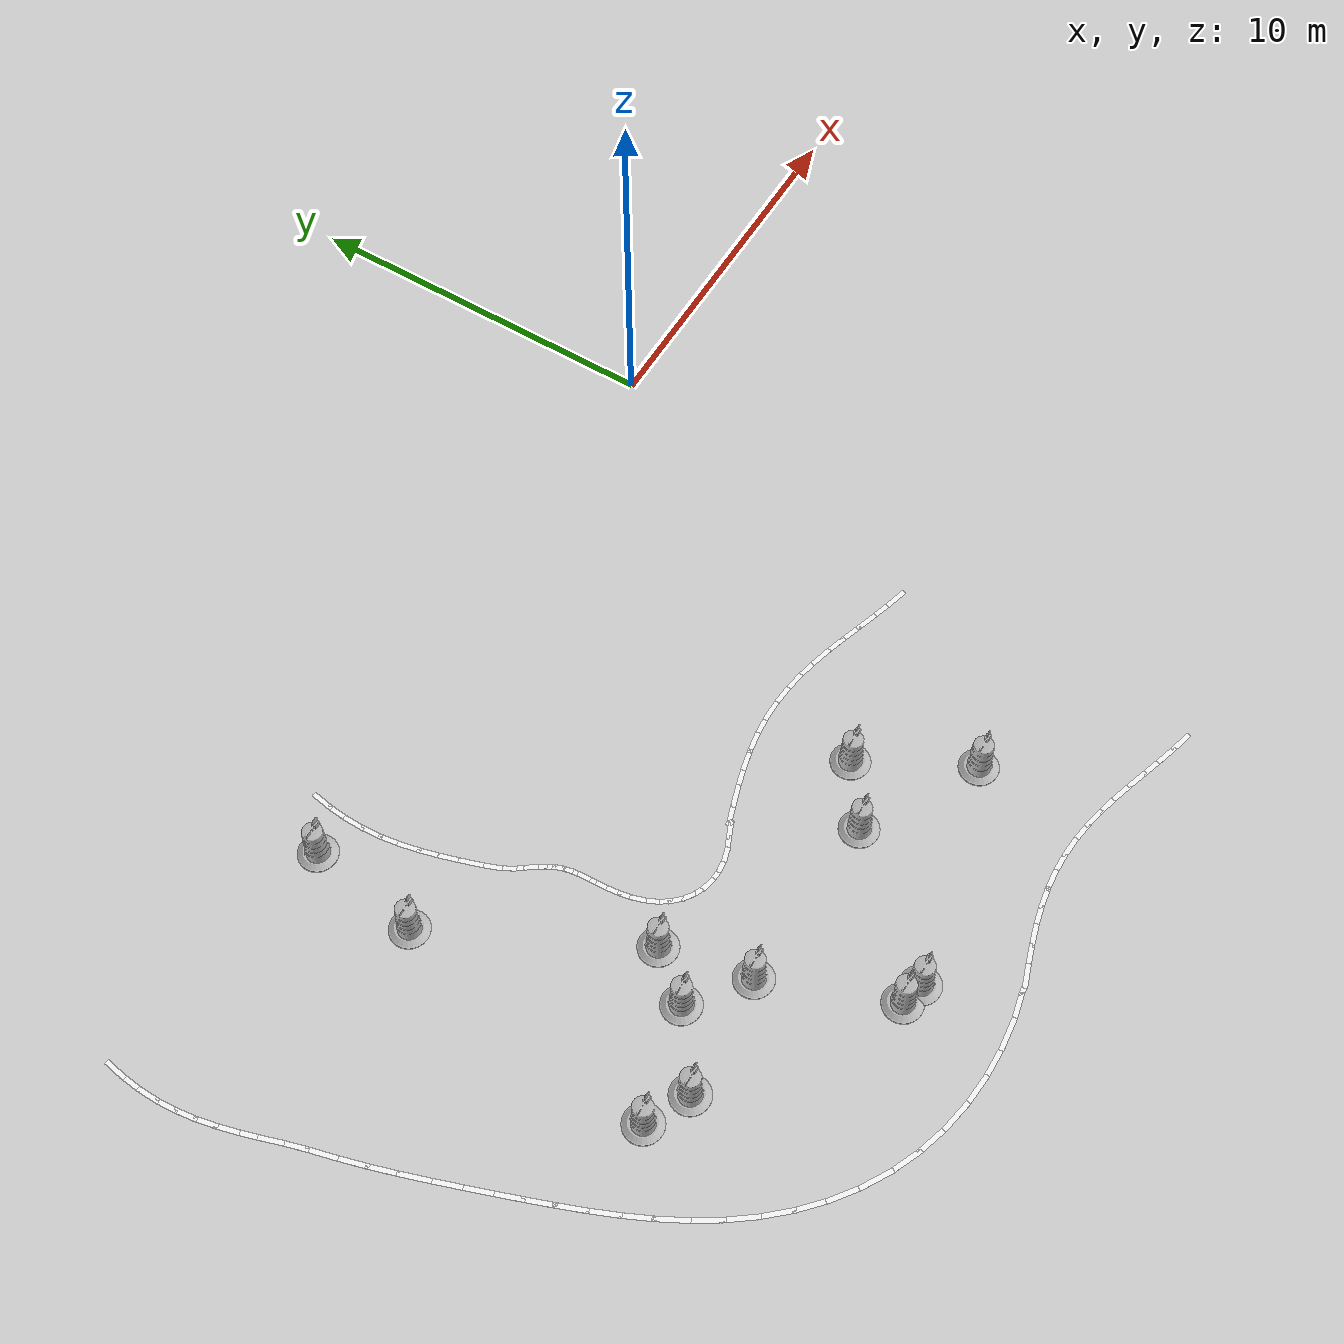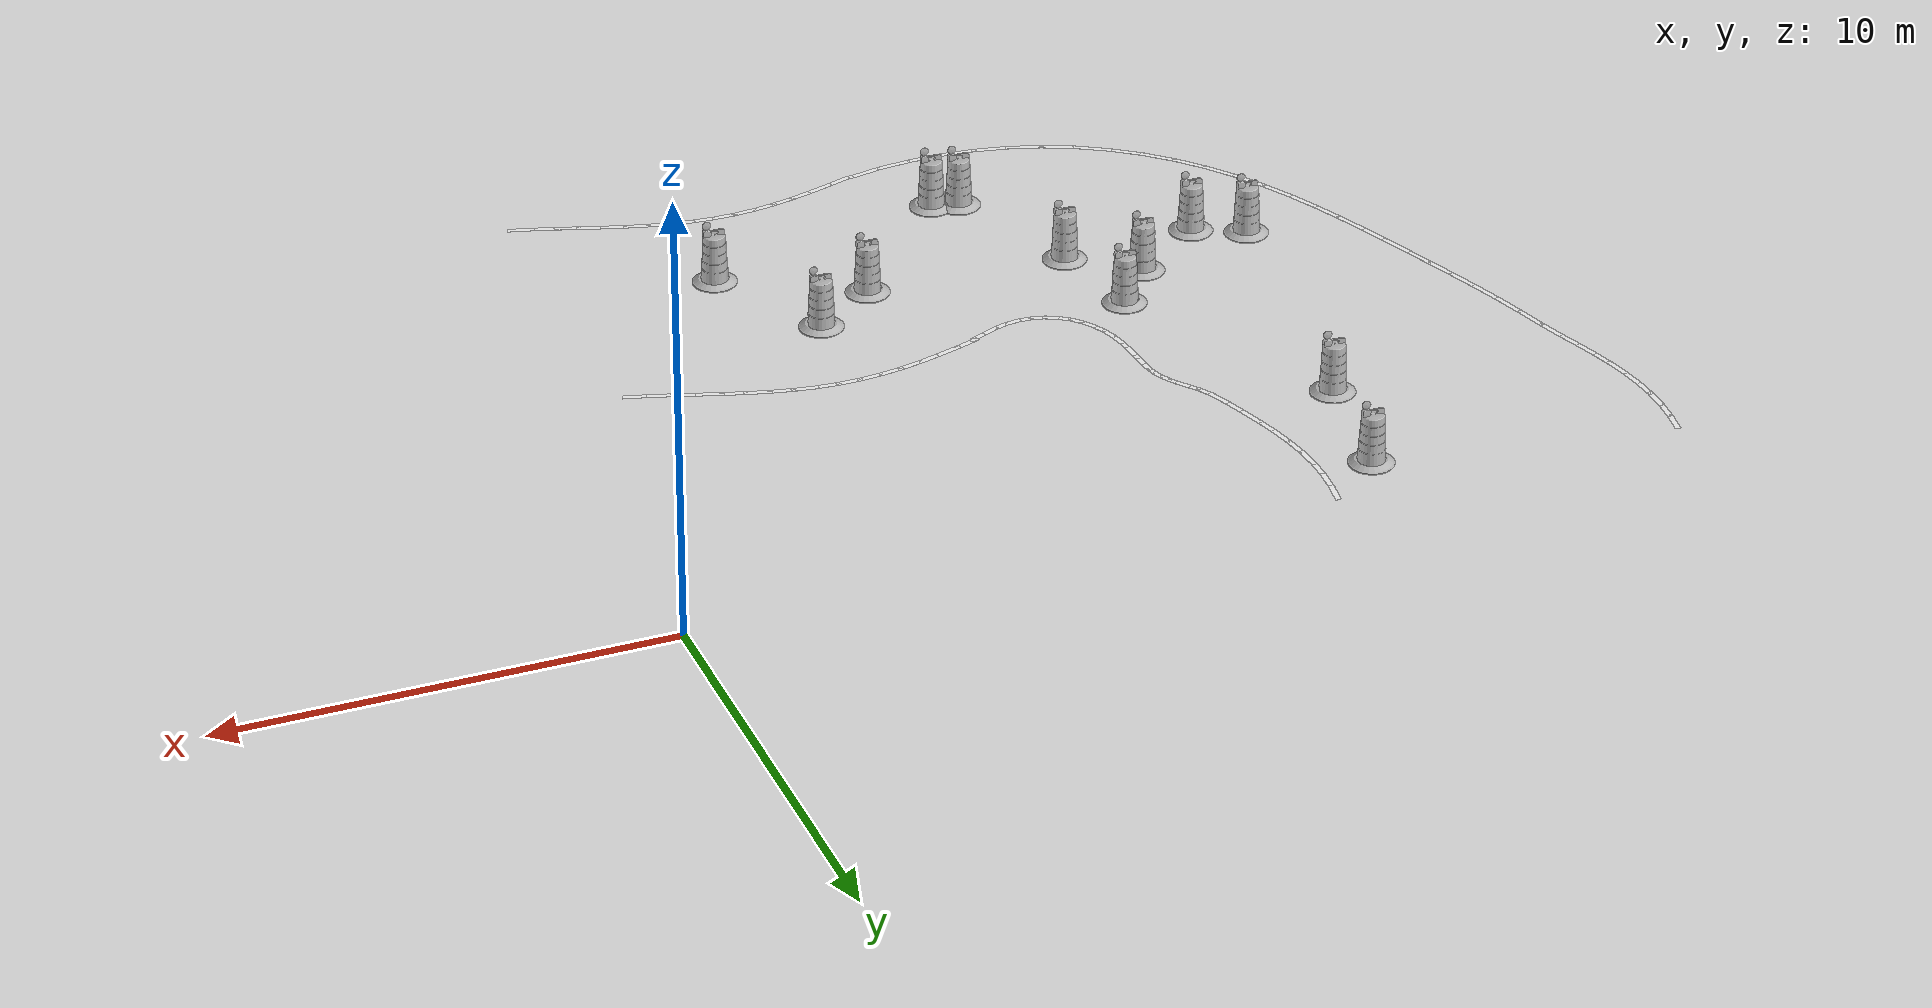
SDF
<sdf version="1.6">
 <model name="orange_igvc">
  <static>true</static>
  <link name="construction_barrel1">
   <pose>-14.58 -10.44 0.05 0 0 0</pose>
   <visual name="visual">
    <geometry><mesh><uri>model://construction_barrel/meshes/construction_barrel.dae</uri></mesh></geometry>
   </visual>
   <collision name="collision">
    <geometry><mesh><uri>model://construction_barrel/meshes/construction_barrel.dae</uri></mesh></geometry>
   </collision>
  </link>
  <link name="construction_barrel4">
   <pose>-13.15 -11.54 0.05 0 0 0</pose>
   <visual name="visual">
    <geometry><mesh><uri>model://construction_barrel/meshes/construction_barrel.dae</uri></mesh></geometry>
   </visual>
   <collision name="collision">
    <geometry><mesh><uri>model://construction_barrel/meshes/construction_barrel.dae</uri></mesh></geometry>
   </collision>
  </link>
  <link name="construction_barrel6">
   <pose>-11.27 -14.93 0.05 0 0 0</pose>
   <visual name="visual">
    <geometry><mesh><uri>model://construction_barrel/meshes/construction_barrel.dae</uri></mesh></geometry>
   </visual>
   <collision name="collision">
    <geometry><mesh><uri>model://construction_barrel/meshes/construction_barrel.dae</uri></mesh></geometry>
   </collision>
  </link>
  <link name="construction_barrel9">
   <pose>-16.32 -11.73 0.05 0 0 0</pose>
   <visual name="visual">
    <geometry><mesh><uri>model://construction_barrel/meshes/construction_barrel.dae</uri></mesh></geometry>
   </visual>
   <collision name="collision">
    <geometry><mesh><uri>model://construction_barrel/meshes/construction_barrel.dae</uri></mesh></geometry>
   </collision>
  </link>
  <link name="construction_barrel10">
   <pose>-13.63 -9.23 0.05 0 0 0</pose>
   <visual name="visual">
    <geometry><mesh><uri>model://construction_barrel/meshes/construction_barrel.dae</uri></mesh></geometry>
   </visual>
   <collision name="collision">
    <geometry><mesh><uri>model://construction_barrel/meshes/construction_barrel.dae</uri></mesh></geometry>
   </collision>
  </link>
  <link name="construction_barrel12">
   <pose>-7.00 -10.69 0.05 0 0 0</pose>
   <visual name="visual">
    <geometry><mesh><uri>model://construction_barrel/meshes/construction_barrel.dae</uri></mesh></geometry>
   </visual>
   <collision name="collision">
    <geometry><mesh><uri>model://construction_barrel/meshes/construction_barrel.dae</uri></mesh></geometry>
   </collision>
  </link>
  <link name="construction_barrel18">
   <pose>-15.81 -1.00 0.05 0 0 0</pose>
   <visual name="visual">
    <geometry><mesh><uri>model://construction_barrel/meshes/construction_barrel.dae</uri></mesh></geometry>
   </visual>
   <collision name="collision">
    <geometry><mesh><uri>model://construction_barrel/meshes/construction_barrel.dae</uri></mesh></geometry>
   </collision>
  </link>
  <link name="construction_barrel21">
   <pose>-8.50 -11.76 0.05 0 0 0</pose>
   <visual name="visual">
    <geometry><mesh><uri>model://construction_barrel/meshes/construction_barrel.dae</uri></mesh></geometry>
   </visual>
   <collision name="collision">
    <geometry><mesh><uri>model://construction_barrel/meshes/construction_barrel.dae</uri></mesh></geometry>
   </collision>
  </link>
  <link name="construction_barrel22">
   <pose>-16.29 -4.00 0.05 0 0 0</pose>
   <visual name="visual">
    <geometry><mesh><uri>model://construction_barrel/meshes/construction_barrel.dae</uri></mesh></geometry>
   </visual>
   <collision name="collision">
    <geometry><mesh><uri>model://construction_barrel/meshes/construction_barrel.dae</uri></mesh></geometry>
   </collision>
  </link>
  <link name="construction_barrel24">
   <pose>-17.45 -11.18 0.05 0 0 0</pose>
   <visual name="visual">
    <geometry><mesh><uri>model://construction_barrel/meshes/construction_barrel.dae</uri></mesh></geometry>
   </visual>
   <collision name="collision">
    <geometry><mesh><uri>model://construction_barrel/meshes/construction_barrel.dae</uri></mesh></geometry>
   </collision>
  </link>
  <link name="construction_barrel25">
   <pose>-11.88 -14.78 0.05 0 0 0</pose>
   <visual name="visual">
    <geometry><mesh><uri>model://construction_barrel/meshes/construction_barrel.dae</uri></mesh></geometry>
   </visual>
   <collision name="collision">
    <geometry><mesh><uri>model://construction_barrel/meshes/construction_barrel.dae</uri></mesh></geometry>
   </collision>
  </link>
  <link name="construction_barrel33">
   <pose>-5.50 -13.45 0.05 0 0 0</pose>
   <visual name="visual">
    <geometry><mesh><uri>model://construction_barrel/meshes/construction_barrel.dae</uri></mesh></geometry>
   </visual>
   <collision name="collision">
    <geometry><mesh><uri>model://construction_barrel/meshes/construction_barrel.dae</uri></mesh></geometry>
   </collision>
  </link>
  <link name="white_line_inner_0">
   <pose>-9.749027792386808 -8.91644247873715 0.005 0 0 0.3237323808328417</pose>
   <visual name="visual">
    <geometry><box><size>0.6253447619169866 0.127 0.001</size></box></geometry>
    <material><ambient>1.0 1.0 1.0 1.0</ambient><diffuse>1.0 1.0 1.0 1.0</diffuse></material>
   </visual>
  </link>
  <link name="white_line_inner_1">
   <pose>-9.25 -8.754158973102335 0.005 0 0 0.30507171125245097</pose>
   <visual name="visual">
    <geometry><box><size>0.6242049454353742 0.127 0.001</size></box></geometry>
    <material><ambient>1.0 1.0 1.0 1.0</ambient><diffuse>1.0 1.0 1.0 1.0</diffuse></material>
   </visual>
  </link>
  <link name="white_line_inner_2">
   <pose>-8.75 -8.606092986514474 0.005 0 0 0.27056072113404495</pose>
   <visual name="visual">
    <geometry><box><size>0.61887609868577 0.127 0.001</size></box></geometry>
    <material><ambient>1.0 1.0 1.0 1.0</ambient><diffuse>1.0 1.0 1.0 1.0</diffuse></material>
   </visual>
  </link>
  <link name="white_line_inner_3">
   <pose>-8.25 -8.480807117056022 0.005 0 0 0.22015442914586508</pose>
   <visual name="visual">
    <geometry><box><size>0.6123666155494492 0.127 0.001</size></box></geometry>
    <material><ambient>1.0 1.0 1.0 1.0</ambient><diffuse>1.0 1.0 1.0 1.0</diffuse></material>
   </visual>
  </link>
  <link name="white_line_inner_4">
   <pose>-7.75 -8.385546797489573 0.005 0 0 0.1559822261198246</pose>
   <visual name="visual">
    <geometry><box><size>0.6061448935681873 0.127 0.001</size></box></geometry>
    <material><ambient>1.0 1.0 1.0 1.0</ambient><diffuse>1.0 1.0 1.0 1.0</diffuse></material>
   </visual>
  </link>
  <link name="white_line_inner_5">
   <pose>-7.25 -8.325821046855701 0.005 0 0 0.08146262360069775</pose>
   <visual name="visual">
    <geometry><box><size>0.6016636395291733 0.127 0.001</size></box></geometry>
    <material><ambient>1.0 1.0 1.0 1.0</ambient><diffuse>1.0 1.0 1.0 1.0</diffuse></material>
   </visual>
  </link>
  <link name="white_line_inner_6">
   <pose>-6.75 -8.30508387726514 0.005 0 0 0.0013053747562815667</pose>
   <visual name="visual">
    <geometry><box><size>0.600000426001116 0.127 0.001</size></box></geometry>
    <material><ambient>1.0 1.0 1.0 1.0</ambient><diffuse>1.0 1.0 1.0 1.0</diffuse></material>
   </visual>
  </link>
  <link name="white_line_inner_7">
   <pose>-6.25 -8.32453454421737 0.005 0 0 -0.07894363862715567</pose>
   <visual name="visual">
    <geometry><box><size>0.6015620805333591 0.127 0.001</size></box></geometry>
    <material><ambient>1.0 1.0 1.0 1.0</ambient><diffuse>1.0 1.0 1.0 1.0</diffuse></material>
   </visual>
  </link>
  <link name="white_line_inner_8">
   <pose>-5.75 -8.383048192210333 0.005 0 0 -0.15372410240245407</pose>
   <visual name="visual">
    <geometry><box><size>0.6059665090060945 0.127 0.001</size></box></geometry>
    <material><ambient>1.0 1.0 1.0 1.0</ambient><diffuse>1.0 1.0 1.0 1.0</diffuse></material>
   </visual>
  </link>
  <link name="white_line_inner_9">
   <pose>-5.25 -8.477240906489243 0.005 0 0 -0.21828972551964032</pose>
   <visual name="visual">
    <geometry><box><size>0.6121537913116318 0.127 0.001</size></box></geometry>
    <material><ambient>1.0 1.0 1.0 1.0</ambient><diffuse>1.0 1.0 1.0 1.0</diffuse></material>
   </visual>
  </link>
  <link name="white_line_inner_10">
   <pose>-4.75 -8.601665408913444 0.005 0 0 -0.26917830241997737</pose>
   <visual name="visual">
    <geometry><box><size>0.618677717624193 0.127 0.001</size></box></geometry>
    <material><ambient>1.0 1.0 1.0 1.0</ambient><diffuse>1.0 1.0 1.0 1.0</diffuse></material>
   </visual>
  </link>
  <link name="white_line_inner_11">
   <pose>-4.25 -8.74912608061362 0.005 0 0 -0.3042226010041338</pose>
   <visual name="visual">
    <geometry><box><size>0.624065006437661 0.127 0.001</size></box></geometry>
    <material><ambient>1.0 1.0 1.0 1.0</ambient><diffuse>1.0 1.0 1.0 1.0</diffuse></material>
   </visual>
  </link>
  <link name="white_line_inner_12">
   <pose>-3.7499999999999996 -8.911095093299569 0.005 0 0 -0.32226682416115493</pose>
   <visual name="visual">
    <geometry><box><size>0.6271370619164044 0.127 0.001</size></box></geometry>
    <material><ambient>1.0 1.0 1.0 1.0</ambient><diffuse>1.0 1.0 1.0 1.0</diffuse></material>
   </visual>
  </link>
  <link name="white_line_inner_13">
   <pose>-3.2499999999999996 -9.07820558384369 0.005 0 0 -0.3228315715904382</pose>
   <visual name="visual">
    <geometry><box><size>0.6272365686535137 0.127 0.001</size></box></geometry>
    <material><ambient>1.0 1.0 1.0 1.0</ambient><diffuse>1.0 1.0 1.0 1.0</diffuse></material>
   </visual>
  </link>
  <link name="white_line_inner_14">
   <pose>-2.7499999999999996 -9.240793351259914 0.005 0 0 -0.30590314914492844</pose>
   <visual name="visual">
    <geometry><box><size>0.6243424107691674 0.127 0.001</size></box></geometry>
    <material><ambient>1.0 1.0 1.0 1.0</ambient><diffuse>1.0 1.0 1.0 1.0</diffuse></material>
   </visual>
  </link>
  <link name="white_line_inner_15">
   <pose>-2.2499999999999996 -9.389455749089171 0.005 0 0 -0.2719266051963547</pose>
   <visual name="visual">
    <geometry><box><size>0.6190732307078665 0.127 0.001</size></box></geometry>
    <material><ambient>1.0 1.0 1.0 1.0</ambient><diffuse>1.0 1.0 1.0 1.0</diffuse></material>
   </visual>
  </link>
  <link name="white_line_inner_176">
   <pose>-14.611917648340356 -0.25 0.005 0 0 -1.7290258523110478</pose>
   <visual name="visual">
    <geometry><box><size>0.6063251121473049 0.127 0.001</size></box></geometry>
    <material><ambient>1.0 1.0 1.0 1.0</ambient><diffuse>1.0 1.0 1.0 1.0</diffuse></material>
   </visual>
  </link>
  <link name="white_line_inner_177">
   <pose>-14.67285191012886 -0.75 0.005 0 0 -1.6547720247853672</pose>
   <visual name="visual">
    <geometry><box><size>0.6017681745223843 0.127 0.001</size></box></geometry>
    <material><ambient>1.0 1.0 1.0 1.0</ambient><diffuse>1.0 1.0 1.0 1.0</diffuse></material>
   </visual>
  </link>
  <link name="white_line_inner_178">
   <pose>-14.694874335370326 -1.25 0.005 0 0 -1.5747123547740902</pose>
   <visual name="visual">
    <geometry><box><size>0.6000038338432805 0.127 0.001</size></box></geometry>
    <material><ambient>1.0 1.0 1.0 1.0</ambient><diffuse>1.0 1.0 1.0 1.0</diffuse></material>
   </visual>
  </link>
  <link name="white_line_inner_179">
   <pose>-14.676711340682633 -1.75 0.005 0 0 -1.4943774067387043</pose>
   <visual name="visual">
    <geometry><box><size>0.6014635237781666 0.127 0.001</size></box></geometry>
    <material><ambient>1.0 1.0 1.0 1.0</ambient><diffuse>1.0 1.0 1.0 1.0</diffuse></material>
   </visual>
  </link>
  <link name="white_line_inner_180">
   <pose>-14.61941331392952 -2.25 0.005 0 0 -1.419341034679056</pose>
   <visual name="visual">
    <geometry><box><size>0.6057900033305835 0.127 0.001</size></box></geometry>
    <material><ambient>1.0 1.0 1.0 1.0</ambient><diffuse>1.0 1.0 1.0 1.0</diffuse></material>
   </visual>
  </link>
  <link name="white_line_inner_181">
   <pose>-14.52629386902502 -2.75 0.005 0 0 -1.3543855726936886</pose>
   <visual name="visual">
    <geometry><box><size>0.6119413172228307 0.127 0.001</size></box></geometry>
    <material><ambient>1.0 1.0 1.0 1.0</ambient><diffuse>1.0 1.0 1.0 1.0</diffuse></material>
   </visual>
  </link>
  <link name="white_line_inner_182">
   <pose>-14.402738215648897 -3.25 0.005 0 0 -1.3030169259915607</pose>
   <visual name="visual">
    <geometry><box><size>0.6184781338331522 0.127 0.001</size></box></geometry>
    <material><ambient>1.0 1.0 1.0 1.0</ambient><diffuse>1.0 1.0 1.0 1.0</diffuse></material>
   </visual>
  </link>
  <link name="white_line_inner_183">
   <pose>-14.255891726083314 -3.75 0.005 0 0 -1.2674404840372357</pose>
   <visual name="visual">
    <geometry><box><size>0.6239226254668137 0.127 0.001</size></box></geometry>
    <material><ambient>1.0 1.0 1.0 1.0</ambient><diffuse>1.0 1.0 1.0 1.0</diffuse></material>
   </visual>
  </link>
  <link name="white_line_inner_184">
   <pose>-14.094246709725725 -4.25 0.005 0 0 -1.2488390674573129</pose>
   <visual name="visual">
    <geometry><box><size>0.6270826048143492 0.127 0.001</size></box></geometry>
    <material><ambient>1.0 1.0 1.0 1.0</ambient><diffuse>1.0 1.0 1.0 1.0</diffuse></material>
   </visual>
  </link>
  <link name="white_line_inner_185">
   <pose>-13.927404942035688 -4.717530890763828 0.005 0 0 -1.2044826340285504</pose>
   <visual name="visual">
    <geometry><box><size>0.5659775097596781 0.127 0.001</size></box></geometry>
    <material><ambient>1.0 1.0 1.0 1.0</ambient><diffuse>1.0 1.0 1.0 1.0</diffuse></material>
   </visual>
  </link>
  <link name="white_line_inner_186">
   <pose>-13.76093714307721 -5.082615791072403 0.005 0 0 -1.0583159725705888</pose>
   <visual name="visual">
    <geometry><box><size>0.4386087570623308 0.127 0.001</size></box></geometry>
    <material><ambient>1.0 1.0 1.0 1.0</ambient><diffuse>1.0 1.0 1.0 1.0</diffuse></material>
   </visual>
  </link>
  <link name="white_line_inner_187">
   <pose>-13.597624903117044 -5.336070156502927 0.005 0 0 -0.9220570269610295</pose>
   <visual name="visual">
    <geometry><box><size>0.36579876002221146 0.127 0.001</size></box></geometry>
    <material><ambient>1.0 1.0 1.0 1.0</ambient><diffuse>1.0 1.0 1.0 1.0</diffuse></material>
   </visual>
  </link>
  <link name="white_line_inner_188">
   <pose>-13.444179773702965 -5.540775684752376 0.005 0 0 -0.9335046727993195</pose>
   <visual name="visual">
    <geometry><box><size>0.3458726271250666 0.127 0.001</size></box></geometry>
    <material><ambient>1.0 1.0 1.0 1.0</ambient><diffuse>1.0 1.0 1.0 1.0</diffuse></material>
   </visual>
  </link>
  <link name="white_line_inner_189">
   <pose>-13.308555353948577 -5.734220658287348 0.005 0 0 -0.9873315067325835</pose>
   <visual name="visual">
    <geometry><box><size>0.3268019891130302 0.127 0.001</size></box></geometry>
    <material><ambient>1.0 1.0 1.0 1.0</ambient><diffuse>1.0 1.0 1.0 1.0</diffuse></material>
   </visual>
  </link>
  <link name="white_line_inner_190">
   <pose>-13.196391308034212 -5.922758296306908 0.005 0 0 -1.0840744377223828</pose>
   <visual name="visual">
    <geometry><box><size>0.3124695791788371 0.127 0.001</size></box></geometry>
    <material><ambient>1.0 1.0 1.0 1.0</ambient><diffuse>1.0 1.0 1.0 1.0</diffuse></material>
   </visual>
  </link>
  <link name="white_line_inner_191">
   <pose>-13.1103453461517 -6.113329887124467 0.005 0 0 -1.2110828203632509</pose>
   <visual name="visual">
    <geometry><box><size>0.3065683558428679 0.127 0.001</size></box></geometry>
    <material><ambient>1.0 1.0 1.0 1.0</ambient><diffuse>1.0 1.0 1.0 1.0</diffuse></material>
   </visual>
  </link>
  <link name="white_line_inner_192">
   <pose>-13.04994089433591 -6.312652349398784 0.005 0 0 -1.3406736954430851</pose>
   <visual name="visual">
    <geometry><box><size>0.31085590931967205 0.127 0.001</size></box></geometry>
    <material><ambient>1.0 1.0 1.0 1.0</ambient><diffuse>1.0 1.0 1.0 1.0</diffuse></material>
   </visual>
  </link>
  <link name="white_line_inner_193">
   <pose>-13.011688437844649 -6.526416953216275 0.005 0 0 -1.4436494776991875</pose>
   <visual name="visual">
    <geometry><box><size>0.32404030641576564 0.127 0.001</size></box></geometry>
    <material><ambient>1.0 1.0 1.0 1.0</ambient><diffuse>1.0 1.0 1.0 1.0</diffuse></material>
   </visual>
  </link>
  <link name="white_line_inner_194">
   <pose>-12.989467704299612 -6.758576141107832 0.005 0 0 -1.5046680761280489</pose>
   <visual name="visual">
    <geometry><box><size>0.3426168666467727 0.127 0.001</size></box></geometry>
    <material><ambient>1.0 1.0 1.0 1.0</ambient><diffuse>1.0 1.0 1.0 1.0</diffuse></material>
   </visual>
  </link>
  <link name="white_line_inner_195">
   <pose>-12.975134610678182 -7.010787565055358 0.005 0 0 -1.5226737583718681</pose>
   <visual name="visual">
    <geometry><box><size>0.3626403132552751 0.127 0.001</size></box></geometry>
    <material><ambient>1.0 1.0 1.0 1.0</ambient><diffuse>1.0 1.0 1.0 1.0</diffuse></material>
   </visual>
  </link>
  <link name="white_line_inner_196">
   <pose>-12.959296986968978 -7.282070196946186 0.005 0 0 -1.502951903598897</pose>
   <visual name="visual">
    <geometry><box><size>0.38087516808272437 0.127 0.001</size></box></geometry>
    <material><ambient>1.0 1.0 1.0 1.0</ambient><diffuse>1.0 1.0 1.0 1.0</diffuse></material>
   </visual>
  </link>
  <link name="white_line_inner_197">
   <pose>-12.932188308423276 -7.568707976455207 0.005 0 0 -1.4513318385111782</pose>
   <visual name="visual">
    <geometry><box><size>0.3951502117608393 0.127 0.001</size></box></geometry>
    <material><ambient>1.0 1.0 1.0 1.0</ambient><diffuse>1.0 1.0 1.0 1.0</diffuse></material>
   </visual>
  </link>
  <link name="white_line_inner_198">
   <pose>-12.884560348003152 -7.86441370487687 0.005 0 0 -1.3720901757968498</pose>
   <visual name="visual">
    <geometry><box><size>0.4043537259173947 0.127 0.001</size></box></geometry>
    <material><ambient>1.0 1.0 1.0 1.0</ambient><diffuse>1.0 1.0 1.0 1.0</diffuse></material>
   </visual>
  </link>
  <link name="white_line_inner_199">
   <pose>-12.80851454067081 -8.160741860030093 0.005 0 0 -1.2677697254526974</pose>
   <visual name="visual">
    <geometry><box><size>0.4083400980282277 0.127 0.001</size></box></geometry>
    <material><ambient>1.0 1.0 1.0 1.0</ambient><diffuse>1.0 1.0 1.0 1.0</diffuse></material>
   </visual>
  </link>
  <link name="white_line_inner_200">
   <pose>-12.698198014107035 -8.447715900549262 0.005 0 0 -1.1397191730490182</pose>
   <visual name="visual">
    <geometry><box><size>0.40781693572747224 0.127 0.001</size></box></geometry>
    <material><ambient>1.0 1.0 1.0 1.0</ambient><diffuse>1.0 1.0 1.0 1.0</diffuse></material>
   </visual>
  </link>
  <link name="white_line_inner_201">
   <pose>-12.550303104602934 -8.71461557090016 0.005 0 0 -0.9889749931060908</pose>
   <visual name="visual">
    <geometry><box><size>0.4041937612699208 0.127 0.001</size></box></geometry>
    <material><ambient>1.0 1.0 1.0 1.0</ambient><diffuse>1.0 1.0 1.0 1.0</diffuse></material>
   </visual>
  </link>
  <link name="white_line_inner_202">
   <pose>-12.364327550101496 -8.95085455883131 0.005 0 0 -0.8174180444900052</pose>
   <visual name="visual">
    <geometry><box><size>0.39934290314154497 0.127 0.001</size></box></geometry>
    <material><ambient>1.0 1.0 1.0 1.0</ambient><diffuse>1.0 1.0 1.0 1.0</diffuse></material>
   </visual>
  </link>
  <link name="white_line_inner_203">
   <pose>-12.142574741586524 -9.146869997119556 0.005 0 0 -0.6290120205087216</pose>
   <visual name="visual">
    <geometry><box><size>0.3952268328136679 0.127 0.001</size></box></geometry>
    <material><ambient>1.0 1.0 1.0 1.0</ambient><diffuse>1.0 1.0 1.0 1.0</diffuse></material>
   </visual>
  </link>
  <link name="white_line_inner_204">
   <pose>-11.889897380401521 -9.294943570008614 0.005 0 0 -0.43052268595960497</pose>
   <visual name="visual">
    <geometry><box><size>0.39340551446416794 0.127 0.001</size></box></geometry>
    <material><ambient>1.0 1.0 1.0 1.0</ambient><diffuse>1.0 1.0 1.0 1.0</diffuse></material>
   </visual>
  </link>
  <link name="white_line_inner_205">
   <pose>-11.613211434789378 -9.389879560125898 0.005 0 0 -0.2309323808807783</pose>
   <visual name="visual">
    <geometry><box><size>0.39455985482059586 0.127 0.001</size></box></geometry>
    <material><ambient>1.0 1.0 1.0 1.0</ambient><diffuse>1.0 1.0 1.0 1.0</diffuse></material>
   </visual>
  </link>
  <link name="white_line_inner_206">
   <pose>-11.320828258266365 -9.429477565235988 0.005 0 0 -0.039491450345447425</pose>
   <visual name="visual">
    <geometry><box><size>0.39825860599727125 0.127 0.001</size></box></geometry>
    <material><ambient>1.0 1.0 1.0 1.0</ambient><diffuse>1.0 1.0 1.0 1.0</diffuse></material>
   </visual>
  </link>
  <link name="white_line_inner_207">
   <pose>-11.021669208984932 -9.414755714183094 0.005 0 0 0.1364115962759082</pose>
   <visual name="visual">
    <geometry><box><size>0.4031078039558499 0.127 0.001</size></box></geometry>
    <material><ambient>1.0 1.0 1.0 1.0</ambient><diffuse>1.0 1.0 1.0 1.0</diffuse></material>
   </visual>
  </link>
  <link name="white_line_inner_208">
   <pose>-10.724437591096628 -9.349902383881348 0.005 0 0 0.29219263343596485</pose>
   <visual name="visual">
    <geometry><box><size>0.40719164058463075 0.127 0.001</size></box></geometry>
    <material><ambient>1.0 1.0 1.0 1.0</ambient><diffuse>1.0 1.0 1.0 1.0</diffuse></material>
   </visual>
  </link>
  <link name="white_line_inner_209">
   <pose>-10.436826276058937 -9.241958656897722 0.005 0 0 0.4255932929215886</pose>
   <visual name="visual">
    <geometry><box><size>0.4085785058951439 0.127 0.001</size></box></geometry>
    <material><ambient>1.0 1.0 1.0 1.0</ambient><diffuse>1.0 1.0 1.0 1.0</diffuse></material>
   </visual>
  </link>
  <link name="white_line_inner_210">
   <pose>-10.1109499609369 -9.10143530518469 0.005 0 0 0.3929227334134169</pose>
   <visual name="visual">
    <geometry><box><size>0.5012812670194552 0.127 0.001</size></box></geometry>
    <material><ambient>1.0 1.0 1.0 1.0</ambient><diffuse>1.0 1.0 1.0 1.0</diffuse></material>
   </visual>
  </link>
  <link name="white_line_inner_211">
   <pose>-9.961827474024139 -9.01230623778757 0.005 0 0 2.81414595221545</pose>
   <visual name="visual">
    <geometry><box><size>0.17652209786667927 0.127 0.001</size></box></geometry>
    <material><ambient>1.0 1.0 1.0 1.0</ambient><diffuse>1.0 1.0 1.0 1.0</diffuse></material>
   </visual>
  </link>
  <link name="white_line_outer_0">
   <pose>-9.750972207613192 -16.9164420061433 0.005 0 0 0.32139233195314476</pose>
   <visual name="visual">
    <geometry><box><size>0.6290327337843307 0.127 0.001</size></box></geometry>
    <material><ambient>1.0 1.0 1.0 1.0</ambient><diffuse>1.0 1.0 1.0 1.0</diffuse></material>
   </visual>
  </link>
  <link name="white_line_outer_1">
   <pose>-9.25 -16.754158973102335 0.005 0 0 0.30507171125245097</pose>
   <visual name="visual">
    <geometry><box><size>0.6242049454353742 0.127 0.001</size></box></geometry>
    <material><ambient>1.0 1.0 1.0 1.0</ambient><diffuse>1.0 1.0 1.0 1.0</diffuse></material>
   </visual>
  </link>
  <link name="white_line_outer_2">
   <pose>-8.75 -16.606092986514476 0.005 0 0 0.27056072113404495</pose>
   <visual name="visual">
    <geometry><box><size>0.61887609868577 0.127 0.001</size></box></geometry>
    <material><ambient>1.0 1.0 1.0 1.0</ambient><diffuse>1.0 1.0 1.0 1.0</diffuse></material>
   </visual>
  </link>
  <link name="white_line_outer_3">
   <pose>-8.25 -16.480807117056024 0.005 0 0 0.22015442914586508</pose>
   <visual name="visual">
    <geometry><box><size>0.6123666155494492 0.127 0.001</size></box></geometry>
    <material><ambient>1.0 1.0 1.0 1.0</ambient><diffuse>1.0 1.0 1.0 1.0</diffuse></material>
   </visual>
  </link>
  <link name="white_line_outer_4">
   <pose>-7.75 -16.385546797489575 0.005 0 0 0.1559822261198246</pose>
   <visual name="visual">
    <geometry><box><size>0.6061448935681873 0.127 0.001</size></box></geometry>
    <material><ambient>1.0 1.0 1.0 1.0</ambient><diffuse>1.0 1.0 1.0 1.0</diffuse></material>
   </visual>
  </link>
  <link name="white_line_outer_5">
   <pose>-7.25 -16.3258210468557 0.005 0 0 0.08146262360069775</pose>
   <visual name="visual">
    <geometry><box><size>0.6016636395291733 0.127 0.001</size></box></geometry>
    <material><ambient>1.0 1.0 1.0 1.0</ambient><diffuse>1.0 1.0 1.0 1.0</diffuse></material>
   </visual>
  </link>
  <link name="white_line_outer_6">
   <pose>-6.75 -16.30508387726514 0.005 0 0 0.0013053747562815667</pose>
   <visual name="visual">
    <geometry><box><size>0.600000426001116 0.127 0.001</size></box></geometry>
    <material><ambient>1.0 1.0 1.0 1.0</ambient><diffuse>1.0 1.0 1.0 1.0</diffuse></material>
   </visual>
  </link>
  <link name="white_line_outer_7">
   <pose>-6.25 -16.32453454421737 0.005 0 0 -0.07894363862715567</pose>
   <visual name="visual">
    <geometry><box><size>0.6015620805333591 0.127 0.001</size></box></geometry>
    <material><ambient>1.0 1.0 1.0 1.0</ambient><diffuse>1.0 1.0 1.0 1.0</diffuse></material>
   </visual>
  </link>
  <link name="white_line_outer_8">
   <pose>-5.75 -16.38304819221033 0.005 0 0 -0.15372410240245407</pose>
   <visual name="visual">
    <geometry><box><size>0.6059665090060945 0.127 0.001</size></box></geometry>
    <material><ambient>1.0 1.0 1.0 1.0</ambient><diffuse>1.0 1.0 1.0 1.0</diffuse></material>
   </visual>
  </link>
  <link name="white_line_outer_9">
   <pose>-5.25 -16.477240906489243 0.005 0 0 -0.21828972551964032</pose>
   <visual name="visual">
    <geometry><box><size>0.6121537913116318 0.127 0.001</size></box></geometry>
    <material><ambient>1.0 1.0 1.0 1.0</ambient><diffuse>1.0 1.0 1.0 1.0</diffuse></material>
   </visual>
  </link>
  <link name="white_line_outer_10">
   <pose>-4.75 -16.601665408913444 0.005 0 0 -0.26917830241998064</pose>
   <visual name="visual">
    <geometry><box><size>0.6186777176241935 0.127 0.001</size></box></geometry>
    <material><ambient>1.0 1.0 1.0 1.0</ambient><diffuse>1.0 1.0 1.0 1.0</diffuse></material>
   </visual>
  </link>
  <link name="white_line_outer_11">
   <pose>-4.25 -16.74912608061362 0.005 0 0 -0.30422260100412757</pose>
   <visual name="visual">
    <geometry><box><size>0.6240650064376595 0.127 0.001</size></box></geometry>
    <material><ambient>1.0 1.0 1.0 1.0</ambient><diffuse>1.0 1.0 1.0 1.0</diffuse></material>
   </visual>
  </link>
  <link name="white_line_outer_12">
   <pose>-3.75 -16.91109509329957 0.005 0 0 -0.3222668241611616</pose>
   <visual name="visual">
    <geometry><box><size>0.6271370619164051 0.127 0.001</size></box></geometry>
    <material><ambient>1.0 1.0 1.0 1.0</ambient><diffuse>1.0 1.0 1.0 1.0</diffuse></material>
   </visual>
  </link>
  <link name="white_line_outer_13">
   <pose>-3.2500000000000004 -17.07820558384369 0.005 0 0 -0.322831571590435</pose>
   <visual name="visual">
    <geometry><box><size>0.6272365686535132 0.127 0.001</size></box></geometry>
    <material><ambient>1.0 1.0 1.0 1.0</ambient><diffuse>1.0 1.0 1.0 1.0</diffuse></material>
   </visual>
  </link>
  <link name="white_line_outer_14">
   <pose>-2.7500000000000004 -17.240793351259914 0.005 0 0 -0.30590314914492844</pose>
   <visual name="visual">
    <geometry><box><size>0.6243424107691674 0.127 0.001</size></box></geometry>
    <material><ambient>1.0 1.0 1.0 1.0</ambient><diffuse>1.0 1.0 1.0 1.0</diffuse></material>
   </visual>
  </link>
  <link name="white_line_outer_15">
   <pose>-2.2500000000000004 -17.389455749089173 0.005 0 0 -0.2719266051963546</pose>
   <visual name="visual">
    <geometry><box><size>0.6190732307078667 0.127 0.001</size></box></geometry>
    <material><ambient>1.0 1.0 1.0 1.0</ambient><diffuse>1.0 1.0 1.0 1.0</diffuse></material>
   </visual>
  </link>
  <link name="white_line_outer_176">
   <pose>-22.611917648340356 -0.25 0.005 0 0 -1.7290258523110478</pose>
   <visual name="visual">
    <geometry><box><size>0.6063251121473049 0.127 0.001</size></box></geometry>
    <material><ambient>1.0 1.0 1.0 1.0</ambient><diffuse>1.0 1.0 1.0 1.0</diffuse></material>
   </visual>
  </link>
  <link name="white_line_outer_177">
   <pose>-22.672851910128863 -0.75 0.005 0 0 -1.6547720247853672</pose>
   <visual name="visual">
    <geometry><box><size>0.6017681745223843 0.127 0.001</size></box></geometry>
    <material><ambient>1.0 1.0 1.0 1.0</ambient><diffuse>1.0 1.0 1.0 1.0</diffuse></material>
   </visual>
  </link>
  <link name="white_line_outer_178">
   <pose>-22.694874335370322 -1.25 0.005 0 0 -1.5747123547740867</pose>
   <visual name="visual">
    <geometry><box><size>0.6000038338432805 0.127 0.001</size></box></geometry>
    <material><ambient>1.0 1.0 1.0 1.0</ambient><diffuse>1.0 1.0 1.0 1.0</diffuse></material>
   </visual>
  </link>
  <link name="white_line_outer_179">
   <pose>-22.67671134068263 -1.75 0.005 0 0 -1.494377406738708</pose>
   <visual name="visual">
    <geometry><box><size>0.6014635237781664 0.127 0.001</size></box></geometry>
    <material><ambient>1.0 1.0 1.0 1.0</ambient><diffuse>1.0 1.0 1.0 1.0</diffuse></material>
   </visual>
  </link>
  <link name="white_line_outer_180">
   <pose>-22.61941331392952 -2.25 0.005 0 0 -1.419341034679056</pose>
   <visual name="visual">
    <geometry><box><size>0.6057900033305835 0.127 0.001</size></box></geometry>
    <material><ambient>1.0 1.0 1.0 1.0</ambient><diffuse>1.0 1.0 1.0 1.0</diffuse></material>
   </visual>
  </link>
  <link name="white_line_outer_181">
   <pose>-22.526293869025018 -2.75 0.005 0 0 -1.3543855726936886</pose>
   <visual name="visual">
    <geometry><box><size>0.6119413172228307 0.127 0.001</size></box></geometry>
    <material><ambient>1.0 1.0 1.0 1.0</ambient><diffuse>1.0 1.0 1.0 1.0</diffuse></material>
   </visual>
  </link>
  <link name="white_line_outer_182">
   <pose>-22.402738215648895 -3.25 0.005 0 0 -1.3030169259915607</pose>
   <visual name="visual">
    <geometry><box><size>0.6184781338331522 0.127 0.001</size></box></geometry>
    <material><ambient>1.0 1.0 1.0 1.0</ambient><diffuse>1.0 1.0 1.0 1.0</diffuse></material>
   </visual>
  </link>
  <link name="white_line_outer_183">
   <pose>-22.255891726083313 -3.75 0.005 0 0 -1.2674404840372357</pose>
   <visual name="visual">
    <geometry><box><size>0.6239226254668137 0.127 0.001</size></box></geometry>
    <material><ambient>1.0 1.0 1.0 1.0</ambient><diffuse>1.0 1.0 1.0 1.0</diffuse></material>
   </visual>
  </link>
  <link name="white_line_outer_184">
   <pose>-22.094246709725724 -4.25 0.005 0 0 -1.2488390674573129</pose>
   <visual name="visual">
    <geometry><box><size>0.6270826048143492 0.127 0.001</size></box></geometry>
    <material><ambient>1.0 1.0 1.0 1.0</ambient><diffuse>1.0 1.0 1.0 1.0</diffuse></material>
   </visual>
  </link>
  <link name="white_line_outer_185">
   <pose>-21.92691675019516 -4.780023261441685 0.005 0 0 -1.279561593638299</pose>
   <visual name="visual">
    <geometry><box><size>0.6846668006661594 0.127 0.001</size></box></geometry>
    <material><ambient>1.0 1.0 1.0 1.0</ambient><diffuse>1.0 1.0 1.0 1.0</diffuse></material>
   </visual>
  </link>
  <link name="white_line_outer_186">
   <pose>-21.75263899403708 -5.394945433119778 0.005 0 0 -1.3073187146327903</pose>
   <visual name="visual">
    <geometry><box><size>0.7937386656292792 0.127 0.001</size></box></geometry>
    <material><ambient>1.0 1.0 1.0 1.0</ambient><diffuse>1.0 1.0 1.0 1.0</diffuse></material>
   </visual>
  </link>
  <link name="white_line_outer_187">
   <pose>-21.558605614834757 -6.084606361413357 0.005 0 0 -1.2864241181401468</pose>
   <visual name="visual">
    <geometry><box><size>0.8392123014489796 0.127 0.001</size></box></geometry>
    <material><ambient>1.0 1.0 1.0 1.0</ambient><diffuse>1.0 1.0 1.0 1.0</diffuse></material>
   </visual>
  </link>
  <link name="white_line_outer_188">
   <pose>-21.3428636950253 -6.785087805342375 0.005 0 0 -1.2573801629723287</pose>
   <visual name="visual">
    <geometry><box><size>0.8268465377981766 0.127 0.001</size></box></geometry>
    <material><ambient>1.0 1.0 1.0 1.0</ambient><diffuse>1.0 1.0 1.0 1.0</diffuse></material>
   </visual>
  </link>
  <link name="white_line_outer_189">
   <pose>-21.11409829319618 -7.469449682354526 0.005 0 0 -1.2388818874341403</pose>
   <visual name="visual">
    <geometry><box><size>0.816385017799575 0.127 0.001</size></box></geometry>
    <material><ambient>1.0 1.0 1.0 1.0</ambient><diffuse>1.0 1.0 1.0 1.0</diffuse></material>
   </visual>
  </link>
  <link name="white_line_outer_190">
   <pose>-20.87831278706948 -8.142128191646524 0.005 0 0 -1.2283868841192216</pose>
   <visual name="visual">
    <geometry><box><size>0.8092449097853138 0.127 0.001</size></box></geometry>
    <material><ambient>1.0 1.0 1.0 1.0</ambient><diffuse>1.0 1.0 1.0 1.0</diffuse></material>
   </visual>
  </link>
  <link name="white_line_outer_191">
   <pose>-20.638647625993645 -8.80817406179018 0.005 0 0 -1.2223788464010734</pose>
   <visual name="visual">
    <geometry><box><size>0.8064683552190034 0.127 0.001</size></box></geometry>
    <material><ambient>1.0 1.0 1.0 1.0</ambient><diffuse>1.0 1.0 1.0 1.0</diffuse></material>
   </visual>
  </link>
  <link name="white_line_outer_192">
   <pose>-20.395226115688917 -9.472447494558716 0.005 0 0 -1.2167182108965264</pose>
   <visual name="visual">
    <geometry><box><size>0.8084764983142343 0.127 0.001</size></box></geometry>
    <material><ambient>1.0 1.0 1.0 1.0</ambient><diffuse>1.0 1.0 1.0 1.0</diffuse></material>
   </visual>
  </link>
  <link name="white_line_outer_193">
   <pose>-20.14527341910989 -10.138824136448825 0.005 0 0 -1.2072147121141354</pose>
   <visual name="visual">
    <geometry><box><size>0.8149638642097878 0.127 0.001</size></box></geometry>
    <material><ambient>1.0 1.0 1.0 1.0</ambient><diffuse>1.0 1.0 1.0 1.0</diffuse></material>
   </visual>
  </link>
  <link name="white_line_outer_194">
   <pose>-19.883495948785374 -10.809488989668724 0.005 0 0 -1.190219288296252</pose>
   <visual name="visual">
    <geometry><box><size>0.8249753257288462 0.127 0.001</size></box></geometry>
    <material><ambient>1.0 1.0 1.0 1.0</ambient><diffuse>1.0 1.0 1.0 1.0</diffuse></material>
   </visual>
  </link>
  <link name="white_line_outer_195">
   <pose>-19.602685085623317 -11.484387350961299 0.005 0 0 -1.163019452055868</pose>
   <visual name="visual">
    <geometry><box><size>0.8371346223961673 0.127 0.001</size></box></geometry>
    <material><ambient>1.0 1.0 1.0 1.0</ambient><diffuse>1.0 1.0 1.0 1.0</diffuse></material>
   </visual>
  </link>
  <link name="white_line_outer_196">
   <pose>-19.294489249599735 -12.160887608769114 0.005 0 0 -1.1239507372172877</pose>
   <visual name="visual">
    <geometry><box><size>0.8499406166443295 0.127 0.001</size></box></geometry>
    <material><ambient>1.0 1.0 1.0 1.0</ambient><diffuse>1.0 1.0 1.0 1.0</diffuse></material>
   </visual>
  </link>
  <link name="white_line_outer_197">
   <pose>-18.950283568528455 -12.833691336609611 0.005 0 0 -1.072288224237521</pose>
   <visual name="visual">
    <geometry><box><size>0.8620430461932305 0.127 0.001</size></box></geometry>
    <material><ambient>1.0 1.0 1.0 1.0</ambient><diffuse>1.0 1.0 1.0 1.0</diffuse></material>
   </visual>
  </link>
  <link name="white_line_outer_198">
   <pose>-18.562058072380456 -13.495003366013053 0.005 0 0 -1.0080487012304689</pose>
   <visual name="visual">
    <geometry><box><size>0.8724401988189672 0.127 0.001</size></box></geometry>
    <material><ambient>1.0 1.0 1.0 1.0</ambient><diffuse>1.0 1.0 1.0 1.0</diffuse></material>
   </visual>
  </link>
  <link name="white_line_outer_199">
   <pose>-18.123244222206125 -14.134950490017054 0.005 0 0 -0.9318110271074854</pose>
   <visual name="visual">
    <geometry><box><size>0.8805769999479292 0.127 0.001</size></box></geometry>
    <material><ambient>1.0 1.0 1.0 1.0</ambient><diffuse>1.0 1.0 1.0 1.0</diffuse></material>
   </visual>
  </link>
  <link name="white_line_outer_200">
   <pose>-17.629405747130242 -14.742214342536146 0.005 0 0 -0.8446039822177351</pose>
   <visual name="visual">
    <geometry><box><size>0.8863462165380117 0.127 0.001</size></box></geometry>
    <material><ambient>1.0 1.0 1.0 1.0</ambient><diffuse>1.0 1.0 1.0 1.0</diffuse></material>
   </visual>
  </link>
  <link name="white_line_outer_201">
   <pose>-17.0787326284454 -15.304823943174517 0.005 0 0 -0.7478601634983155</pose>
   <visual name="visual">
    <geometry><box><size>0.8900076375281969 0.127 0.001</size></box></geometry>
    <material><ambient>1.0 1.0 1.0 1.0</ambient><diffuse>1.0 1.0 1.0 1.0</diffuse></material>
   </visual>
  </link>
  <link name="white_line_outer_202">
   <pose>-16.47229544438191 -15.811038238731179 0.005 0 0 -0.6434043571171614</pose>
   <visual name="visual">
    <geometry><box><size>0.892047024936367 0.127 0.001</size></box></geometry>
    <material><ambient>1.0 1.0 1.0 1.0</ambient><diffuse>1.0 1.0 1.0 1.0</diffuse></material>
   </visual>
  </link>
  <link name="white_line_outer_203">
   <pose>-15.81403947958905 -16.250240114184216 0.005 0 0 -0.5334339273581009</pose>
   <visual name="visual">
    <geometry><box><size>0.893003458435597 0.127 0.001</size></box></geometry>
    <material><ambient>1.0 1.0 1.0 1.0</ambient><diffuse>1.0 1.0 1.0 1.0</diffuse></material>
   </visual>
  </link>
  <link name="white_line_outer_204">
   <pose>-15.11052197089433 -16.613761615944462 0.005 0 0 -0.42045503288636965</pose>
   <visual name="visual">
    <geometry><box><size>0.8933005421539749 0.127 0.001</size></box></geometry>
    <material><ambient>1.0 1.0 1.0 1.0</ambient><diffuse>1.0 1.0 1.0 1.0</diffuse></material>
   </visual>
  </link>
  <link name="white_line_outer_205">
   <pose>-14.370419407668587 -16.895565707087712 0.005 0 0 -0.3071601495547474</pose>
   <visual name="visual">
    <geometry><box><size>0.8931195717447384 0.127 0.001</size></box></geometry>
    <material><ambient>1.0 1.0 1.0 1.0</ambient><diffuse>1.0 1.0 1.0 1.0</diffuse></material>
   </visual>
  </link>
  <link name="white_line_outer_206">
   <pose>-13.603852775402679 -17.09272226944306 0.005 0 0 -0.1962621195693312</pose>
   <visual name="visual">
    <geometry><box><size>0.8923460180257455 0.127 0.001</size></box></geometry>
    <material><ambient>1.0 1.0 1.0 1.0</ambient><diffuse>1.0 1.0 1.0 1.0</diffuse></material>
   </visual>
  </link>
  <link name="white_line_outer_207">
   <pose>-12.82159510849612 -17.20563416906044 0.005 0 0 -0.09032311700798246</pose>
   <visual name="visual">
    <geometry><box><size>0.8906032956804248 0.127 0.001</size></box></geometry>
    <material><ambient>1.0 1.0 1.0 1.0</ambient><diffuse>1.0 1.0 1.0 1.0</diffuse></material>
   </visual>
  </link>
  <link name="white_line_outer_208">
   <pose>-12.034236200863884 -17.237991375789015 0.005 0 0 0.008380307917213208</pose>
   <visual name="visual">
    <geometry><box><size>0.8873649514306117 0.127 0.001</size></box></geometry>
    <material><ambient>1.0 1.0 1.0 1.0</ambient><diffuse>1.0 1.0 1.0 1.0</diffuse></material>
   </visual>
  </link>
  <link name="white_line_outer_209">
   <pose>-11.251382860541064 -17.196455367128983 0.005 0 0 0.09793433507952175</pose>
   <visual name="visual">
    <geometry><box><size>0.8821170752051862 0.127 0.001</size></box></geometry>
    <material><ambient>1.0 1.0 1.0 1.0</ambient><diffuse>1.0 1.0 1.0 1.0</diffuse></material>
   </visual>
  </link>
  <link name="white_line_outer_210">
   <pose>-10.535461853076928 -17.088909453326842 0.005 0 0 0.20902687585218543</pose>
   <visual name="visual">
    <geometry><box><size>0.7680130718661436 0.127 0.001</size></box></geometry>
    <material><ambient>1.0 1.0 1.0 1.0</ambient><diffuse>1.0 1.0 1.0 1.0</diffuse></material>
   </visual>
  </link>
  <link name="white_line_outer_211">
   <pose>-10.105334974719732 -17.00979996691965 0.005 0 0 0.0945080839338313</pose>
   <visual name="visual">
    <geometry><box><size>0.3077080297629845 0.127 0.001</size></box></geometry>
    <material><ambient>1.0 1.0 1.0 1.0</ambient><diffuse>1.0 1.0 1.0 1.0</diffuse></material>
   </visual>
  </link>
 </model>
</sdf>
